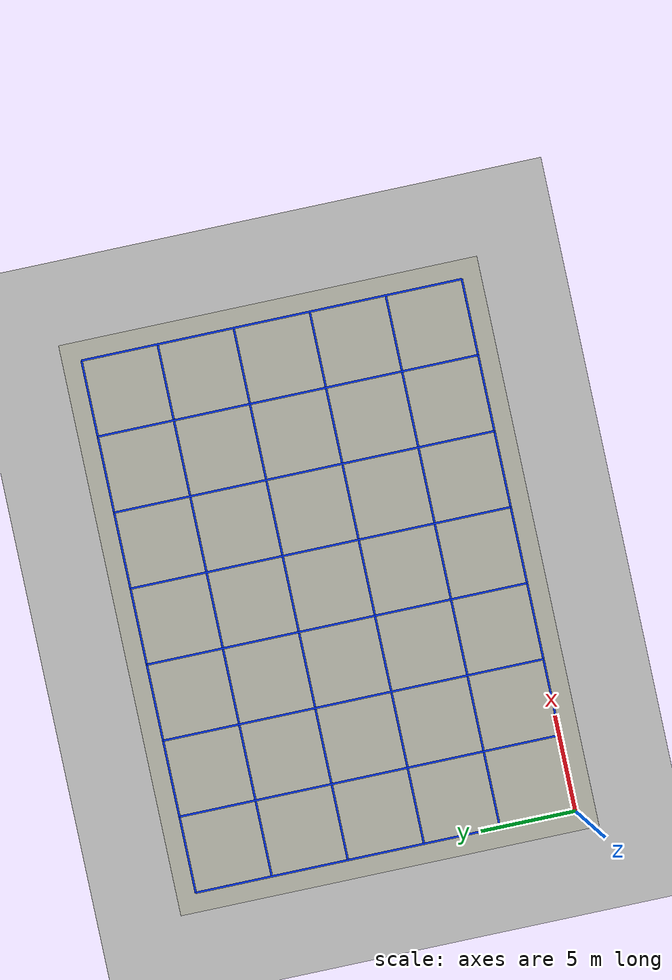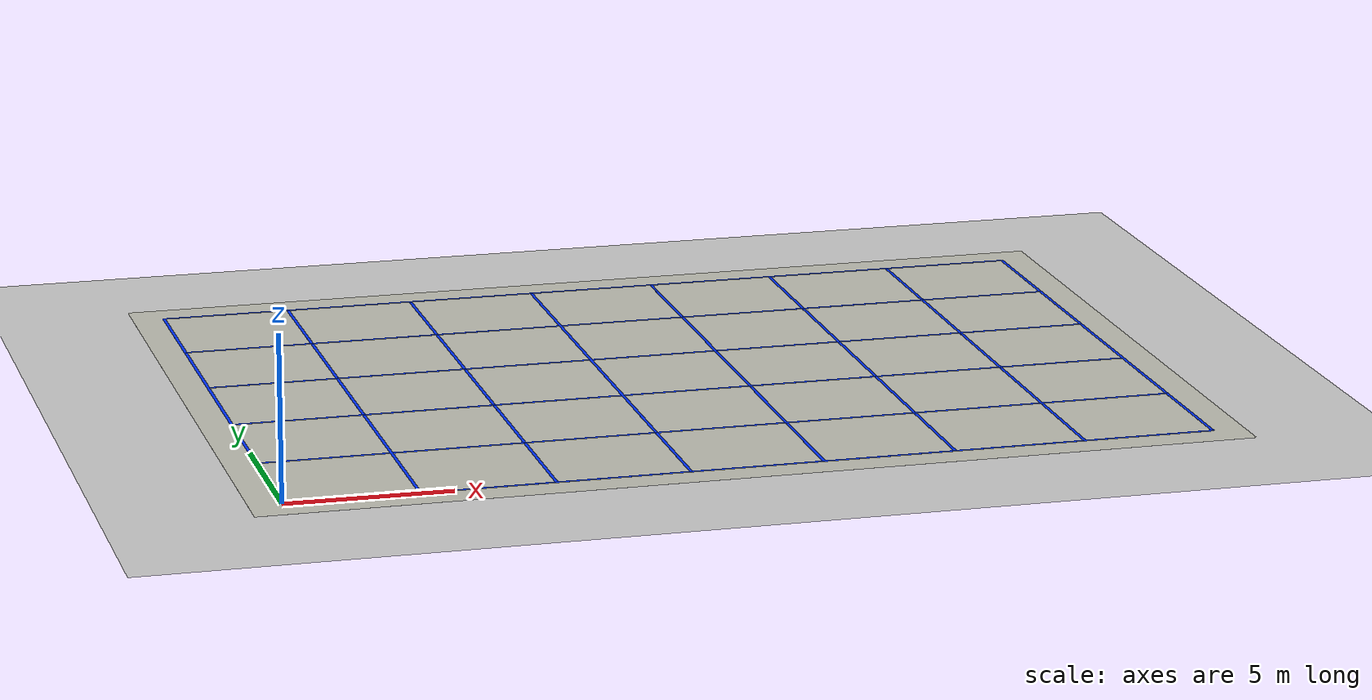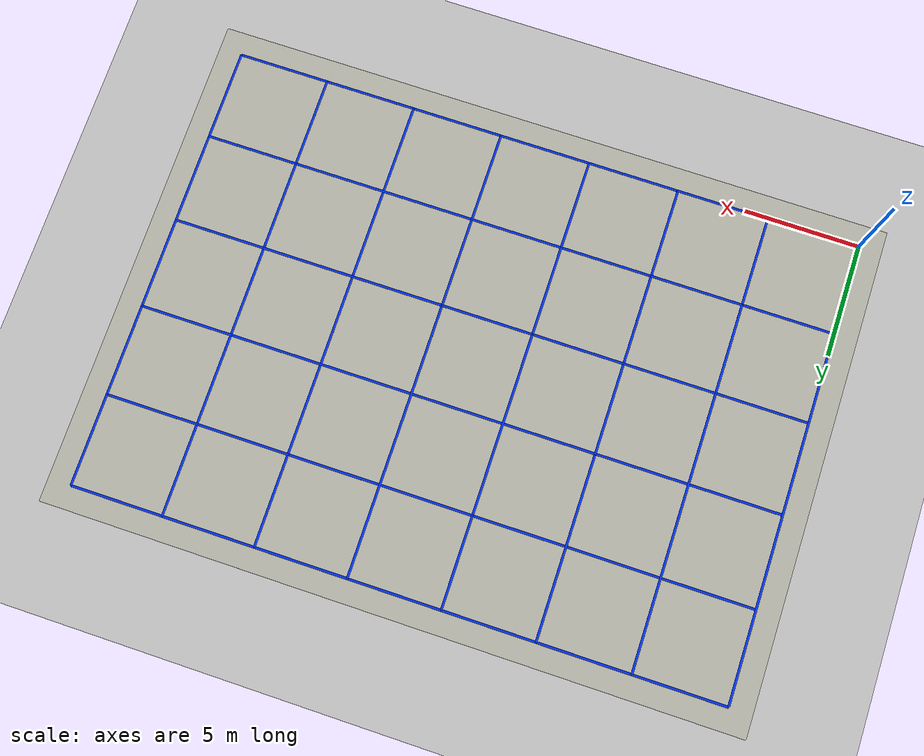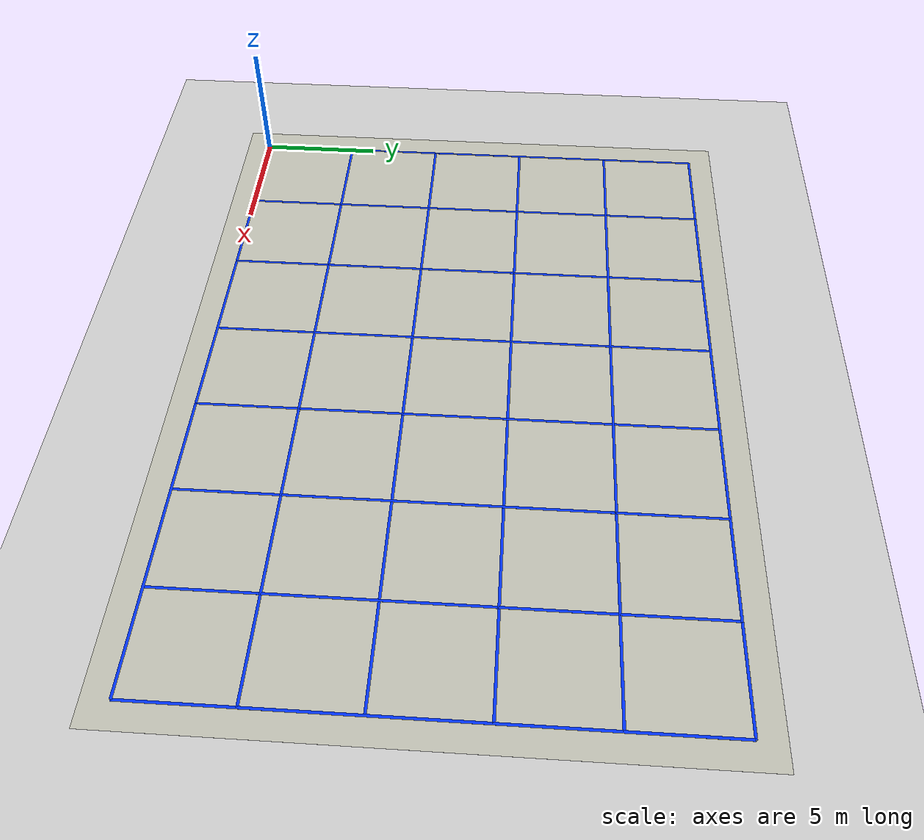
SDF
<?xml version="1.0" ?>
<sdf version="1.6">
  <world name="competition">

    <physics name="default_physics" default="0" type="ode">
      <max_step_size>0.001</max_step_size>
      <real_time_factor>1.0</real_time_factor>
      <real_time_update_rate>1000</real_time_update_rate>
    </physics>

    <include><uri>model://sun</uri></include>
    <scene>
      <ambient>0.6 0.6 0.6 1</ambient>
      <background>0.7 0.7 0.7 1</background>
      <shadows>0</shadows>
    </scene>

    <include><uri>model://ground_plane</uri></include>

    <model name="competition_floor">
      <static>true</static>
      <pose>14 10 0.0005 0 0 0</pose>
      <link name="link">
        <visual name="visual">
          <geometry><box><size>30 22 0.001</size></box></geometry>
          <material>
            <ambient>0.75 0.75 0.7 1</ambient>
            <diffuse>0.75 0.75 0.7 1</diffuse>
          </material>
        </visual>
      </link>
    </model>

    <!-- vertical lines: parallel to north, every 4 m east of origin -->
    <model name="vline_0">
      <static>true</static><pose>0 10 0.001 0 0 0</pose>
      <link name="link"><visual name="v">
        <geometry><box><size>0.1 20 0.001</size></box></geometry>
        <material><ambient>0.0 0.1 0.6 1</ambient><diffuse>0.0 0.2 1.0 1</diffuse></material>
      </visual></link>
    </model>
    <model name="vline_1">
      <static>true</static><pose>4 10 0.001 0 0 0</pose>
      <link name="link"><visual name="v">
        <geometry><box><size>0.1 20 0.001</size></box></geometry>
        <material><ambient>0.0 0.1 0.6 1</ambient><diffuse>0.0 0.2 1.0 1</diffuse></material>
      </visual></link>
    </model>
    <model name="vline_2">
      <static>true</static><pose>8 10 0.001 0 0 0</pose>
      <link name="link"><visual name="v">
        <geometry><box><size>0.1 20 0.001</size></box></geometry>
        <material><ambient>0.0 0.1 0.6 1</ambient><diffuse>0.0 0.2 1.0 1</diffuse></material>
      </visual></link>
    </model>
    <model name="vline_3">
      <static>true</static><pose>12 10 0.001 0 0 0</pose>
      <link name="link"><visual name="v">
        <geometry><box><size>0.1 20 0.001</size></box></geometry>
        <material><ambient>0.0 0.1 0.6 1</ambient><diffuse>0.0 0.2 1.0 1</diffuse></material>
      </visual></link>
    </model>
    <model name="vline_4">
      <static>true</static><pose>16 10 0.001 0 0 0</pose>
      <link name="link"><visual name="v">
        <geometry><box><size>0.1 20 0.001</size></box></geometry>
        <material><ambient>0.0 0.1 0.6 1</ambient><diffuse>0.0 0.2 1.0 1</diffuse></material>
      </visual></link>
    </model>
    <model name="vline_5">
      <static>true</static><pose>20 10 0.001 0 0 0</pose>
      <link name="link"><visual name="v">
        <geometry><box><size>0.1 20 0.001</size></box></geometry>
        <material><ambient>0.0 0.1 0.6 1</ambient><diffuse>0.0 0.2 1.0 1</diffuse></material>
      </visual></link>
    </model>
    <model name="vline_6">
      <static>true</static><pose>24 10 0.001 0 0 0</pose>
      <link name="link"><visual name="v">
        <geometry><box><size>0.1 20 0.001</size></box></geometry>
        <material><ambient>0.0 0.1 0.6 1</ambient><diffuse>0.0 0.2 1.0 1</diffuse></material>
      </visual></link>
    </model>
    <model name="vline_7">
      <static>true</static><pose>28 10 0.001 0 0 0</pose>
      <link name="link"><visual name="v">
        <geometry><box><size>0.1 20 0.001</size></box></geometry>
        <material><ambient>0.0 0.1 0.6 1</ambient><diffuse>0.0 0.2 1.0 1</diffuse></material>
      </visual></link>
    </model>

    <!-- horizontal lines: parallel to east, every 4 m north of origin -->
    <model name="hline_0">
      <static>true</static><pose>14 0 0.001 0 0 0</pose>
      <link name="link"><visual name="h">
        <geometry><box><size>28 0.1 0.001</size></box></geometry>
        <material><ambient>0.0 0.1 0.6 1</ambient><diffuse>0.0 0.2 1.0 1</diffuse></material>
      </visual></link>
    </model>
    <model name="hline_1">
      <static>true</static><pose>14 4 0.001 0 0 0</pose>
      <link name="link"><visual name="h">
        <geometry><box><size>28 0.1 0.001</size></box></geometry>
        <material><ambient>0.0 0.1 0.6 1</ambient><diffuse>0.0 0.2 1.0 1</diffuse></material>
      </visual></link>
    </model>
    <model name="hline_2">
      <static>true</static><pose>14 8 0.001 0 0 0</pose>
      <link name="link"><visual name="h">
        <geometry><box><size>28 0.1 0.001</size></box></geometry>
        <material><ambient>0.0 0.1 0.6 1</ambient><diffuse>0.0 0.2 1.0 1</diffuse></material>
      </visual></link>
    </model>
    <model name="hline_3">
      <static>true</static><pose>14 12 0.001 0 0 0</pose>
      <link name="link"><visual name="h">
        <geometry><box><size>28 0.1 0.001</size></box></geometry>
        <material><ambient>0.0 0.1 0.6 1</ambient><diffuse>0.0 0.2 1.0 1</diffuse></material>
      </visual></link>
    </model>
    <model name="hline_4">
      <static>true</static><pose>14 16 0.001 0 0 0</pose>
      <link name="link"><visual name="h">
        <geometry><box><size>28 0.1 0.001</size></box></geometry>
        <material><ambient>0.0 0.1 0.6 1</ambient><diffuse>0.0 0.2 1.0 1</diffuse></material>
      </visual></link>
    </model>
    <model name="hline_5">
      <static>true</static><pose>14 20 0.001 0 0 0</pose>
      <link name="link"><visual name="h">
        <geometry><box><size>28 0.1 0.001</size></box></geometry>
        <material><ambient>0.0 0.1 0.6 1</ambient><diffuse>0.0 0.2 1.0 1</diffuse></material>
      </visual></link>
    </model>

  </world>
</sdf>
